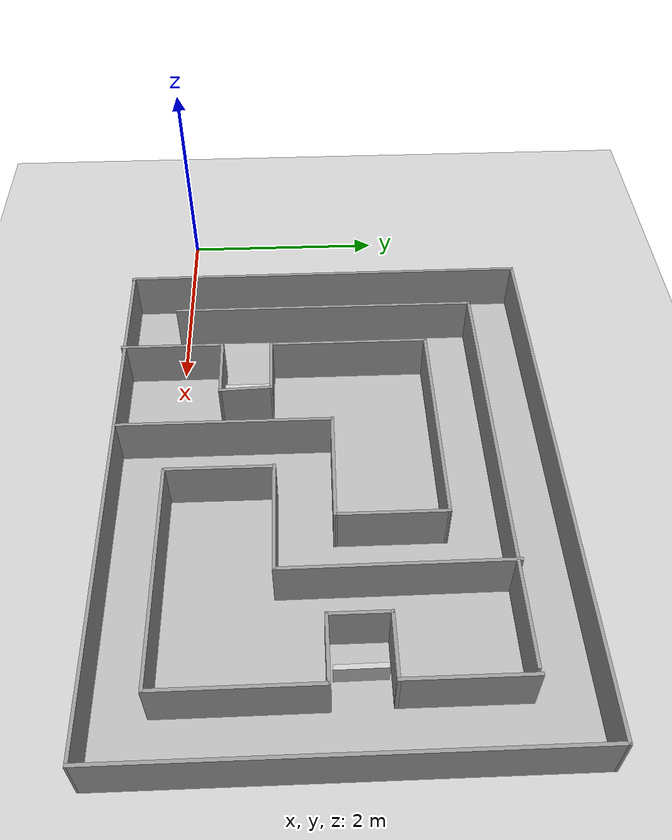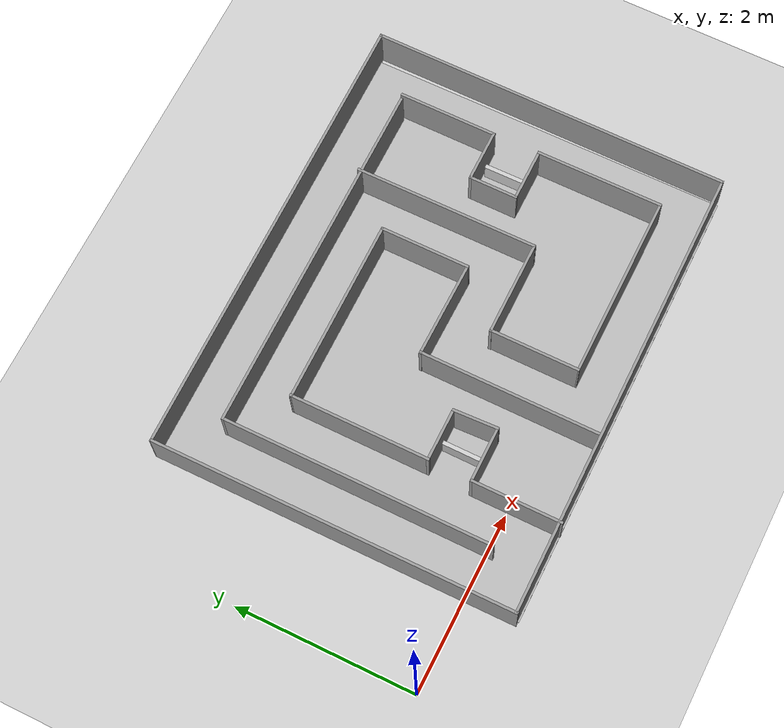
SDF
<sdf version="1.7">
 <world name="default">
  <light name="sun" type="directional">
   <pose>0 0 10 0 -0 0</pose>
   <diffuse>0.8 0.8 0.8 1</diffuse>
   <specular>0.2 0.2 0.2 1</specular>
   <attenuation>
    <range>1000</range>
    <constant>0.9</constant>
    <linear>0.01</linear>
    <quadratic>0.001</quadratic>
   </attenuation>
   <direction>-0.5 0.1 -0.9</direction>
   <spot><inner_angle>0</inner_angle><outer_angle>0</outer_angle><falloff>0</falloff></spot>
  </light>
  <light name="side_light" type="point">
   <pose>3 2 1 0 -0 0</pose>
   <diffuse>1 1 1 1</diffuse>
   <attenuation><linear>0</linear><quadratic>0</quadratic><range>10</range></attenuation>
   <direction>0 0 -1</direction>
   <spot><inner_angle>0</inner_angle><outer_angle>0</outer_angle><falloff>0</falloff></spot>
   <range>5.0</range>
  </light>
  <model name="ground_plane">
   <static>1</static>
   <link name="link">
    <collision name="collision">
     <geometry><plane><normal>0 0 1</normal><size>100 100</size></plane></geometry>
     <surface><friction><ode><mu>100</mu><mu2>50</mu2></ode></friction></surface>
    </collision>
    <visual name="visual">
     <cast_shadows>0</cast_shadows>
     <geometry><plane><normal>0 0 1</normal><size>100 100</size></plane></geometry>
     <material>
      <script><uri>file://media/materials/scripts/gazebo.material</uri><name>Gazebo/Grey</name></script>
     </material>
    </visual>
   </link>
  </model>
  <gravity>0 0 -9.8</gravity>
  <magnetic_field>6e-06 2.3e-05 -4.2e-05</magnetic_field>
  <atmosphere type="adiabatic"/>
  <physics type="ode">
   <max_step_size>0.001</max_step_size>
   <real_time_factor>1</real_time_factor>
   <real_time_update_rate>1000</real_time_update_rate>
  </physics>
  <scene><ambient>0.4 0.4 0.4 1</ambient><background>0.7 0.7 0.7 1</background><shadows>1</shadows></scene>
  <spherical_coordinates>
   <surface_model>EARTH_WGS84</surface_model>
   <latitude_deg>0</latitude_deg>
   <longitude_deg>0</longitude_deg>
   <elevation>0</elevation>
   <heading_deg>0</heading_deg>
  </spherical_coordinates>
  <model name="rk_square_v2">
   <pose>3.57103 1.43653 0 0 -0 0</pose>
   <link name="Wall_0">
    <collision name="Wall_0_Collision">
     <geometry><box><size>4.01302 0.03 0.5</size></box></geometry>
     <pose>0 0 0.25 0 -0 0</pose>
    </collision>
    <visual name="Wall_0_Visual">
     <pose>0 0 0.25 0 -0 0</pose>
     <geometry><box><size>4.01302 0.03 0.5</size></box></geometry>
     <material>
      <script><uri>file://media/materials/scripts/gazebo.material</uri><name>Gazebo/Grey</name></script>
      <ambient>1 1 1 1</ambient>
     </material>
     <meta><layer>0</layer></meta>
    </visual>
    <pose>-2.53339 -0.004576 0 0 -0 1.57406</pose>
   </link>
   <link name="Wall_10">
    <collision name="Wall_10_Collision">
     <geometry><box><size>4 0.03 0.5</size></box></geometry>
     <pose>0 0 0.25 0 -0 0</pose>
    </collision>
    <visual name="Wall_10_Visual">
     <pose>0 0 0.25 0 -0 0</pose>
     <geometry><box><size>4 0.03 0.5</size></box></geometry>
     <material>
      <script><uri>file://media/materials/scripts/gazebo.material</uri><name>Gazebo/Grey</name></script>
      <ambient>1 1 1 1</ambient>
     </material>
     <meta><layer>0</layer></meta>
    </visual>
    <pose>-0.043133 1.46849 0 0 -0 0</pose>
   </link>
   <link name="Wall_12">
    <collision name="Wall_12_Collision">
     <geometry><box><size>1.005 0.03 0.5</size></box></geometry>
     <pose>0 0 0.25 0 -0 0</pose>
    </collision>
    <visual name="Wall_12_Visual">
     <pose>0 0 0.25 0 -0 0</pose>
     <geometry><box><size>1.005 0.03 0.5</size></box></geometry>
     <material>
      <script><uri>file://media/materials/scripts/gazebo.material</uri><name>Gazebo/Grey</name></script>
      <ambient>1 1 1 1</ambient>
     </material>
     <meta><layer>0</layer></meta>
    </visual>
    <pose>-1.52613 -1.51702 0 0 -0 -1.5708</pose>
   </link>
   <link name="Wall_14">
    <collision name="Wall_14_Collision">
     <geometry><box><size>0.63 0.03 0.5</size></box></geometry>
     <pose>0 0 0.25 0 -0 0</pose>
    </collision>
    <visual name="Wall_14_Visual">
     <pose>0 0 0.25 0 -0 0</pose>
     <geometry><box><size>0.63 0.03 0.5</size></box></geometry>
     <material>
      <script><uri>file://media/materials/scripts/gazebo.material</uri><name>Gazebo/Grey</name></script>
      <ambient>1 1 1 1</ambient>
     </material>
     <meta><layer>0</layer></meta>
    </visual>
    <pose>-1.22613 -1.02951 0 0 -0 0</pose>
   </link>
   <link name="Wall_2">
    <collision name="Wall_2_Collision">
     <geometry><box><size>5.10976 0.03 0.5</size></box></geometry>
     <pose>0 0 0.25 0 -0 0</pose>
    </collision>
    <visual name="Wall_2_Visual">
     <pose>0 0 0.25 0 -0 0</pose>
     <geometry><box><size>5.10976 0.03 0.5</size></box></geometry>
     <material>
      <script><uri>file://media/materials/scripts/gazebo.material</uri><name>Gazebo/Grey</name></script>
      <ambient>1 1 1 1</ambient>
     </material>
     <meta><layer>0</layer></meta>
    </visual>
    <pose>-1e-05 1.99948 0 0 -0 0.001969</pose>
   </link>
   <link name="Wall_21">
    <collision name="Wall_21_Collision">
     <geometry><box><size>0.6 0.03 0.5</size></box></geometry>
     <pose>0 0 0.25 0 -0 0</pose>
    </collision>
    <visual name="Wall_21_Visual">
     <pose>0 0 0.25 0 -0 0</pose>
     <geometry><box><size>0.6 0.03 0.5</size></box></geometry>
     <material>
      <script><uri>file://media/materials/scripts/gazebo.material</uri><name>Gazebo/Grey</name></script>
      <ambient>1 1 1 1</ambient>
     </material>
     <meta><layer>0</layer></meta>
    </visual>
    <pose>-1.23097 -0.550446 0 0 -0 -0.000241</pose>
   </link>
   <link name="Wall_23">
    <collision name="Wall_23_Collision">
     <geometry><box><size>1.55255 0.03 0.5</size></box></geometry>
     <pose>0 0 0.25 0 -0 0</pose>
    </collision>
    <visual name="Wall_23_Visual">
     <pose>0 0 0.25 0 -0 0</pose>
     <geometry><box><size>1.55255 0.03 0.5</size></box></geometry>
     <material>
      <script><uri>file://media/materials/scripts/gazebo.material</uri><name>Gazebo/Grey</name></script>
      <ambient>1 1 1 1</ambient>
     </material>
     <meta><layer>0</layer></meta>
    </visual>
    <pose>-1.51597 0.210862 0 0 -0 1.57101</pose>
   </link>
   <link name="Wall_25">
    <collision name="Wall_25_Collision">
     <geometry><box><size>2.06053 0.03 0.5</size></box></geometry>
     <pose>0 0 0.25 0 -0 0</pose>
    </collision>
    <visual name="Wall_25_Visual">
     <pose>0 0 0.25 0 -0 0</pose>
     <geometry><box><size>2.06053 0.03 0.5</size></box></geometry>
     <material>
      <script><uri>file://media/materials/scripts/gazebo.material</uri><name>Gazebo/Grey</name></script>
      <ambient>1 1 1 1</ambient>
     </material>
     <meta><layer>0</layer></meta>
    </visual>
    <pose>-0.50087 0.970132 0 0 -0 0.002318</pose>
   </link>
   <link name="Wall_27">
    <collision name="Wall_27_Collision">
     <geometry><box><size>1 0.03 0.5</size></box></geometry>
     <pose>0 0 0.25 0 -0 0</pose>
    </collision>
    <visual name="Wall_27_Visual">
     <pose>0 0 0.25 0 -0 0</pose>
     <geometry><box><size>1 0.03 0.5</size></box></geometry>
     <material>
      <script><uri>file://media/materials/scripts/gazebo.material</uri><name>Gazebo/Grey</name></script>
      <ambient>1 1 1 1</ambient>
     </material>
     <meta><layer>0</layer></meta>
    </visual>
    <pose>0.51463 0.483324 0 0 -0 -1.57031</pose>
   </link>
   <link name="Wall_29">
    <collision name="Wall_29_Collision">
     <geometry><box><size>1.08735 0.03 0.5</size></box></geometry>
     <pose>0 0 0.25 0 -0 0</pose>
    </collision>
    <visual name="Wall_29_Visual">
     <pose>0 0 0.25 0 -0 0</pose>
     <geometry><box><size>1.08735 0.03 0.5</size></box></geometry>
     <material>
      <script><uri>file://media/materials/scripts/gazebo.material</uri><name>Gazebo/Grey</name></script>
      <ambient>1 1 1 1</ambient>
     </material>
     <meta><layer>0</layer></meta>
    </visual>
    <pose>-0.013754 0.005943 0 0 -0 3.12749</pose>
   </link>
   <link name="Wall_31">
    <collision name="Wall_31_Collision">
     <geometry><box><size>2 0.03 0.5</size></box></geometry>
     <pose>0 0 0.25 0 -0 0</pose>
    </collision>
    <visual name="Wall_31_Visual">
     <pose>0 0 0.25 0 -0 0</pose>
     <geometry><box><size>2 0.03 0.5</size></box></geometry>
     <material>
      <script><uri>file://media/materials/scripts/gazebo.material</uri><name>Gazebo/Grey</name></script>
      <ambient>1 1 1 1</ambient>
     </material>
     <meta><layer>0</layer></meta>
    </visual>
    <pose>-0.537403 -0.971599 0 0 -0 -1.5708</pose>
   </link>
   <link name="Wall_33">
    <collision name="Wall_33_Collision">
     <geometry><box><size>2.04475 0.03 0.5</size></box></geometry>
     <pose>0 0 0.25 0 -0 0</pose>
    </collision>
    <visual name="Wall_33_Visual">
     <pose>0 0 0.25 0 -0 0</pose>
     <geometry><box><size>2.04475 0.03 0.5</size></box></geometry>
     <material>
      <script><uri>file://media/materials/scripts/gazebo.material</uri><name>Gazebo/Grey</name></script>
      <ambient>1 1 1 1</ambient>
     </material>
     <meta><layer>0</layer></meta>
    </visual>
    <pose>1.01684 0.489112 0 0 -0 -1.56586</pose>
   </link>
   <link name="Wall_35">
    <collision name="Wall_35_Collision">
     <geometry><box><size>1.06461 0.03 0.5</size></box></geometry>
     <pose>0 0 0.25 0 -0 0</pose>
    </collision>
    <visual name="Wall_35_Visual">
     <pose>0 0 0.25 0 -0 0</pose>
     <geometry><box><size>1.06461 0.03 0.5</size></box></geometry>
     <material>
      <script><uri>file://media/materials/scripts/gazebo.material</uri><name>Gazebo/Grey</name></script>
      <ambient>1 1 1 1</ambient>
     </material>
     <meta><layer>0</layer></meta>
    </visual>
    <pose>0.499537 -0.518388 0 0 -0 -3.14135</pose>
   </link>
   <link name="Wall_37">
    <collision name="Wall_37_Collision">
     <geometry><box><size>1 0.03 0.5</size></box></geometry>
     <pose>0 0 0.25 0 -0 0</pose>
    </collision>
    <visual name="Wall_37_Visual">
     <pose>0 0 0.25 0 -0 0</pose>
     <geometry><box><size>1 0.03 0.5</size></box></geometry>
     <material>
      <script><uri>file://media/materials/scripts/gazebo.material</uri><name>Gazebo/Grey</name></script>
      <ambient>1 1 1 1</ambient>
     </material>
     <meta><layer>0</layer></meta>
    </visual>
    <pose>-0.012963 -1.00351 0 0 -0 -1.57115</pose>
   </link>
   <link name="Wall_39">
    <collision name="Wall_39_Collision">
     <geometry><box><size>2.05149 0.03 0.5</size></box></geometry>
     <pose>0 0 0.25 0 -0 0</pose>
    </collision>
    <visual name="Wall_39_Visual">
     <pose>0 0 0.25 0 -0 0</pose>
     <geometry><box><size>2.05149 0.03 0.5</size></box></geometry>
     <material>
      <script><uri>file://media/materials/scripts/gazebo.material</uri><name>Gazebo/Grey</name></script>
      <ambient>1 1 1 1</ambient>
     </material>
     <meta><layer>0</layer></meta>
    </visual>
    <pose>0.997609 -1.491 0 0 -0 -0.002459</pose>
   </link>
   <link name="Wall_4">
    <collision name="Wall_4_Collision">
     <geometry><box><size>4 0.03 0.5</size></box></geometry>
     <pose>0 0 0.25 0 -0 0</pose>
    </collision>
    <visual name="Wall_4_Visual">
     <pose>0 0 0.25 0 -0 0</pose>
     <geometry><box><size>4 0.03 0.5</size></box></geometry>
     <material>
      <script><uri>file://media/materials/scripts/gazebo.material</uri><name>Gazebo/Grey</name></script>
      <ambient>1 1 1 1</ambient>
     </material>
     <meta><layer>0</layer></meta>
    </visual>
    <pose>2.53987 0.019485 0 0 -0 -1.5708</pose>
   </link>
   <link name="Wall_41">
    <collision name="Wall_41_Collision">
     <geometry><box><size>1.41501 0.03 0.5</size></box></geometry>
     <pose>0 0 0.25 0 -0 0</pose>
    </collision>
    <visual name="Wall_41_Visual">
     <pose>0 0 0.25 0 -0 0</pose>
     <geometry><box><size>1.41501 0.03 0.5</size></box></geometry>
     <material>
      <script><uri>file://media/materials/scripts/gazebo.material</uri><name>Gazebo/Grey</name></script>
      <ambient>1 1 1 1</ambient>
     </material>
     <meta><layer>0</layer></meta>
    </visual>
    <pose>2.01302 -0.800982 0 0 -0 1.57355</pose>
   </link>
   <link name="Wall_43">
    <collision name="Wall_43_Collision">
     <geometry><box><size>0.6 0.03 0.5</size></box></geometry>
     <pose>0 0 0.25 0 -0 0</pose>
    </collision>
    <visual name="Wall_43_Visual">
     <pose>0 0 0.25 0 -0 0</pose>
     <geometry><box><size>0.6 0.03 0.5</size></box></geometry>
     <material>
      <script><uri>file://media/materials/scripts/gazebo.material</uri><name>Gazebo/Grey</name></script>
      <ambient>1 1 1 1</ambient>
     </material>
     <meta><layer>0</layer></meta>
    </visual>
    <pose>1.72599 -0.108496 0 0 -0 -3.14153</pose>
   </link>
   <link name="Wall_45">
    <collision name="Wall_45_Collision">
     <geometry><box><size>0.55 0.03 0.5</size></box></geometry>
     <pose>0 0 0.25 0 -0 0</pose>
    </collision>
    <visual name="Wall_45_Visual">
     <pose>0 0 0.25 0 -0 0</pose>
     <geometry><box><size>0.55 0.03 0.5</size></box></geometry>
     <material>
      <script><uri>file://media/materials/scripts/gazebo.material</uri><name>Gazebo/Grey</name></script>
      <ambient>1 1 1 1</ambient>
     </material>
     <meta><layer>0</layer></meta>
    </visual>
    <pose>1.44087 0.151485 0 0 -0 1.5708</pose>
   </link>
   <link name="Wall_47">
    <collision name="Wall_47_Collision">
     <geometry><box><size>0.588565 0.03 0.5</size></box></geometry>
     <pose>0 0 0.25 0 -0 0</pose>
    </collision>
    <visual name="Wall_47_Visual">
     <pose>0 0 0.25 0 -0 0</pose>
     <geometry><box><size>0.588565 0.03 0.5</size></box></geometry>
     <material>
      <script><uri>file://media/materials/scripts/gazebo.material</uri><name>Gazebo/Grey</name></script>
      <ambient>1 1 1 1</ambient>
     </material>
     <meta><layer>0</layer></meta>
    </visual>
    <pose>1.72015 0.411485 0 0 -0 0</pose>
   </link>
   <link name="Wall_49">
    <collision name="Wall_49_Collision">
     <geometry><box><size>1.1 0.03 0.5</size></box></geometry>
     <pose>0 0 0.25 0 -0 0</pose>
    </collision>
    <visual name="Wall_49_Visual">
     <pose>0 0 0.25 0 -0 0</pose>
     <geometry><box><size>1.1 0.03 0.5</size></box></geometry>
     <material>
      <script><uri>file://media/materials/scripts/gazebo.material</uri><name>Gazebo/Grey</name></script>
      <ambient>1 1 1 1</ambient>
     </material>
     <meta><layer>0</layer></meta>
    </visual>
    <pose>1.99943 0.946485 0 0 -0 1.5708</pose>
   </link>
   <link name="Wall_52">
    <collision name="Wall_52_Collision">
     <geometry><box><size>0.509541 0.03 0.5</size></box></geometry>
     <pose>0 0 0.25 0 -0 0</pose>
    </collision>
    <visual name="Wall_52_Visual">
     <pose>0 0 0.25 0 -0 0</pose>
     <geometry><box><size>0.509541 0.03 0.5</size></box></geometry>
     <material>
      <script><uri>file://media/materials/scripts/gazebo.material</uri><name>Gazebo/Grey</name></script>
      <ambient>1 1 1 1</ambient>
     </material>
     <meta><layer>0</layer></meta>
    </visual>
    <pose>-0.936133 -0.790015 0 0 -0 1.61253</pose>
   </link>
   <link name="Wall_6">
    <collision name="Wall_6_Collision">
     <geometry><box><size>5.09681 0.03 0.5</size></box></geometry>
     <pose>0 0 0.25 0 -0 0</pose>
    </collision>
    <visual name="Wall_6_Visual">
     <pose>0 0 0.25 0 -0 0</pose>
     <geometry><box><size>5.09681 0.03 0.5</size></box></geometry>
     <material>
      <script><uri>file://media/materials/scripts/gazebo.material</uri><name>Gazebo/Grey</name></script>
      <ambient>1 1 1 1</ambient>
     </material>
     <meta><layer>0</layer></meta>
    </visual>
    <pose>0.00649 -1.97701 0 0 -0 -3.13705</pose>
   </link>
   <link name="Wall_8">
    <collision name="Wall_8_Collision">
     <geometry><box><size>3 0.03 0.5</size></box></geometry>
     <pose>0 0 0.25 0 -0 0</pose>
    </collision>
    <visual name="Wall_8_Visual">
     <pose>0 0 0.25 0 -0 0</pose>
     <geometry><box><size>3 0.03 0.5</size></box></geometry>
     <material>
      <script><uri>file://media/materials/scripts/gazebo.material</uri><name>Gazebo/Grey</name></script>
      <ambient>1 1 1 1</ambient>
     </material>
     <meta><layer>0</layer></meta>
    </visual>
    <pose>-2.02813 -0.016515 0 0 -0 -1.5708</pose>
   </link>
   <static>1</static>
  </model>
  <model name="rk_map">
   <pose>3.56429 1.42758 0.01 0 -0 -1.56627</pose>
   <static>1</static>
   <link name="link">
    <inertial>
     <mass>0.5</mass>
     <inertia><ixx>0.001</ixx><ixy>0</ixy><ixz>0</ixz><iyy>0.001</iyy><iyz>0</iyz><izz>0.001</izz></inertia>
    </inertial>
    <collision name="collision">
     <geometry><box><size>4 5 0.01</size></box></geometry>
     <max_contacts>100</max_contacts>
    </collision>
    <visual name="visual">
     <cast_shadows>0</cast_shadows>
     <geometry><box><size>4 5 0.01</size></box></geometry>
     <material>
      <script>
       <uri>model://rk_map/materials/scripts</uri>
       <uri>model://rk_map/materials/textures</uri>
       <name>MyGround/rk_map</name>
      </script>
     </material>
    </visual>
   </link>
  </model>
  <model name="rk_box1">
   <static>1</static>
   <link name="link">
    <visual name="visual">
     <geometry><mesh><uri>model://rk_box1/meshes/rk_box1.dae</uri><scale>0.45 0.45 0.45</scale></mesh></geometry>
    </visual>
    <collision name="collision"><geometry><box><size>2.22222 0.222222 1.11111</size></box></geometry></collision>
   </link>
   <pose>2.3574 0.651898 0 0 0 -1.57393</pose>
   <scale>0.45 0.45 0.45</scale>
  </model>
  <model name="rk_box2">
   <static>1</static>
   <link name="link">
    <visual name="visual">
     <geometry><mesh><uri>model://rk_box2/meshes/rk_box2.dae</uri><scale>0.45 0.45 0.45</scale></mesh></geometry>
    </visual>
    <collision name="collision"><geometry><box><size>2.22222 0.222222 1.11111</size></box></geometry></collision>
   </link>
   <pose>5.32501 1.59073 0 0 -0 1.57949</pose>
   <scale>0.45 0.45 0.45</scale>
  </model>
  <light name="side_light_clone" type="point">
   <pose>0.920561 0.766058 1 0 -0 0</pose>
   <diffuse>1 1 1 1</diffuse>
   <specular>0.1 0.1 0.1 1</specular>
   <direction>0 0 -1</direction>
   <attenuation><range>10</range><constant>1</constant><linear>0</linear><quadratic>0</quadratic></attenuation>
   <cast_shadows>0</cast_shadows>
  </light>
 </world>
</sdf>
